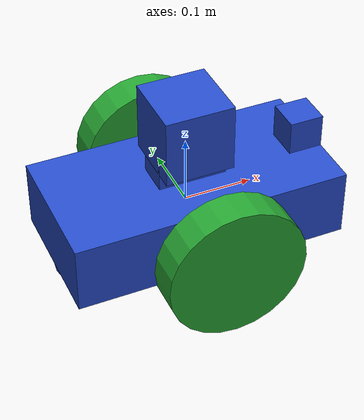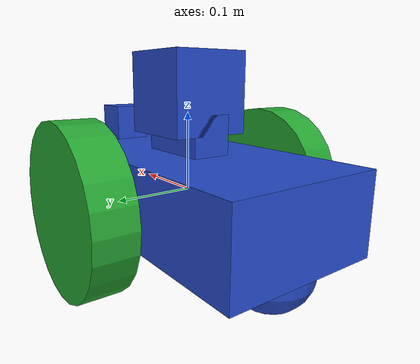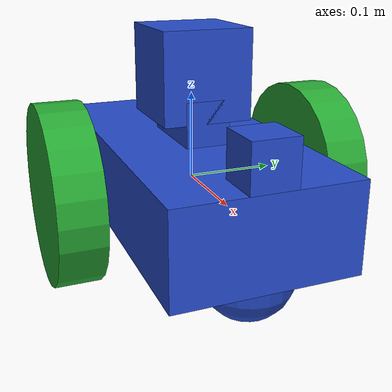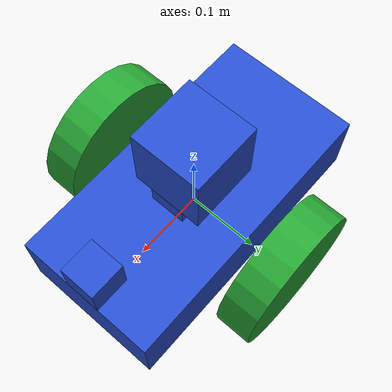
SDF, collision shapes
<?xml version='1.0'?>
<sdf version='1.6'>
  <model name='myxbot'>
    <link name='robot_footprint'>
      <pose frame=''>0 0 0 0 -0 0</pose>
      <inertial>
        <pose frame=''>0.001054 0 0.007556 0 -0 0</pose>
        <mass>16.6062</mass>
        <inertia>
          <ixx>0.209089</ixx>
          <ixy>0</ixy>
          <ixz>0</ixz>
          <iyy>0.212133</iyy>
          <iyz>0</iyz>
          <izz>0.203046</izz>
        </inertia>
      </inertial>
      <self_collide>0</self_collide>
      <kinematic>0</kinematic>
      <velocity_decay/>
      <sensor name='camera1' type='depth'>
        <always_on>1</always_on>
        <update_rate>20</update_rate>
        <visualize>1</visualize>
        <camera name='__default__'>
          <horizontal_fov>1.047</horizontal_fov>
          <image>
            <width>640</width>
            <height>480</height>
            <format>R8G8B8</format>
          </image>
          <depth_camera>
            <output>depths</output>
          </depth_camera>
          <clip>
            <near>0.1</near>
            <far>20</far>
          </clip>
        </camera>
        <plugin name='camera_controller' filename='libgazebo_ros_openni_kinect.so'>
          <alwaysOn>true</alwaysOn>
          <updateRate>10.0</updateRate>
          <cameraName>camera</cameraName>
          <frameName>camera_rgbd_frame</frameName>
          <imageTopicName>rgb/image_raw</imageTopicName>
          <depthImageTopicName>depth/image_raw</depthImageTopicName>
          <pointCloudTopicName>depth/points</pointCloudTopicName>
          <cameraInfoTopicName>rgb/camera_info</cameraInfoTopicName>
          <depthImageCameraInfoTopicName>depth/camera_info</depthImageCameraInfoTopicName>
          <pointCloudCutoff>0.4</pointCloudCutoff>
          <hackBaseline>0.07</hackBaseline>
          <distortionK1>0.0</distortionK1>
          <distortionK2>0.0</distortionK2>
          <distortionK3>0.0</distortionK3>
          <distortionT1>0.0</distortionT1>
          <distortionT2>0.0</distortionT2>
          <CxPrime>0.0</CxPrime>
          <Cx>0.0</Cx>
          <Cy>0.0</Cy>
          <focalLength>0.0</focalLength>
          <robotNamespace>/</robotNamespace>
        </plugin>
        <pose frame=''>0.175 0 0.075 0 -0 0</pose>
      </sensor>
      <sensor name='head_hokuyo_sensor' type='ray'>
        <visualize>0</visualize>
        <update_rate>40</update_rate>
        <ray>
          <scan>
            <horizontal>
              <samples>720</samples>
              <resolution>1</resolution>
              <min_angle>-1.5708</min_angle>
              <max_angle>1.5708</max_angle>
            </horizontal>
            <vertical>
              <samples>1</samples>
              <min_angle>0</min_angle>
              <max_angle>0</max_angle>
            </vertical>
          </scan>
          <range>
            <min>0.1</min>
            <max>30</max>
            <resolution>0.01</resolution>
          </range>
          <noise>
            <type>gaussian</type>
            <mean>0</mean>
            <stddev>0.01</stddev>
          </noise>
        </ray>
        <plugin name='gazebo_ros_head_hokuyo_controller' filename='libgazebo_ros_laser.so'>
          <topicName>scan</topicName>
          <frameName>hokuyo</frameName>
          <robotNamespace>/</robotNamespace>
        </plugin>
        <pose frame=''>0 0 0.125 0 -0 0</pose>
      </sensor>
      <gravity>1</gravity>
      <visual name='robot_footprint_fixed_joint_lump__chassis_visual_visual'>
        <pose frame=''>0 0 0 0 -0 0</pose>
        <geometry>
          <box>
            <size>0.4 0.2 0.1</size>
          </box>
        </geometry>
        <material>
          <script>
            <name>Gazebo/Blue</name>
            <uri>file://media/materials/scripts/gazebo.material</uri>
          </script>
          <shader type='pixel'>
            <normal_map>__default__</normal_map>
          </shader>
          <ambient>1 1 1 1</ambient>
          <diffuse>0 0 1 1</diffuse>
          <specular>0.1 0.1 0.1 1</specular>
          <emissive>0 0 0 1</emissive>
        </material>
        <transparency>0</transparency>
        <cast_shadows>1</cast_shadows>
      </visual>
      <visual name='robot_footprint_fixed_joint_lump__back_caster_visual_visual_1'>
        <pose frame=''>-0.15 0 -0.05 0 -0 0</pose>
        <geometry>
          <sphere>
            <radius>0.05</radius>
          </sphere>
        </geometry>
        <material>
          <shader type='pixel'>
            <normal_map>__default__</normal_map>
          </shader>
        </material>
        <cast_shadows>1</cast_shadows>
        <transparency>0</transparency>
      </visual>
      <visual name='robot_footprint_fixed_joint_lump__front_caster_visual_visual_2'>
        <pose frame=''>0.15 0 -0.05 0 -0 0</pose>
        <geometry>
          <sphere>
            <radius>0.05</radius>
          </sphere>
        </geometry>
        <material>
          <shader type='pixel'>
            <normal_map>__default__</normal_map>
          </shader>
        </material>
        <cast_shadows>1</cast_shadows>
        <transparency>0</transparency>
      </visual>
      <visual name='robot_footprint_fixed_joint_lump__sensor_base_visual_visual_3'>
        <pose frame=''>0 0 0.075 0 -0 0</pose>
        <geometry>
          <box>
            <size>0.1 0.05 0.05</size>
          </box>
        </geometry>
        <material>
          <script>
            <name>Gazebo/Green</name>
            <uri>file://media/materials/scripts/gazebo.material</uri>
          </script>
          <shader type='pixel'>
            <normal_map>__default__</normal_map>
          </shader>
          <ambient>0 1 0 1</ambient>
          <diffuse>0 1 0 1</diffuse>
          <specular>0.1 0.1 0.1 1</specular>
          <emissive>0 0 0 1</emissive>
        </material>
        <transparency>0</transparency>
        <cast_shadows>1</cast_shadows>
      </visual>
      <visual name='robot_footprint_fixed_joint_lump__camera_visual_visual_4'>
        <pose frame=''>0.175 0 0.075 0 -0 0</pose>
        <geometry>
          <box>
            <size>0.05 0.05 0.05</size>
          </box>
        </geometry>
        <material>
          <shader type='pixel'>
            <normal_map>__default__</normal_map>
          </shader>
        </material>
        <cast_shadows>1</cast_shadows>
        <transparency>0</transparency>
      </visual>
      <visual name='robot_footprint_fixed_joint_lump__hokuyo_visual_visual_5'>
        <pose frame=''>0 0 0.125 0 -0 0</pose>
        <geometry>
          <mesh>
            <scale>1 1 1</scale>
            <uri>/home/hytham/catkin_ws/src/slam_project/meshes/hokuyo.dae</uri>
          </mesh>
        </geometry>
        <material>
          <script>
            <uri>__default__</uri>
            <name>__default__</name>
          </script>
          <shader type='pixel'>
            <normal_map>__default__</normal_map>
          </shader>
        </material>
        <cast_shadows>1</cast_shadows>
        <transparency>0</transparency>
      </visual>
      <collision name='robot_footprint_fixed_joint_lump__collision_collision'>
        <laser_retro>0</laser_retro>
        <max_contacts>10</max_contacts>
        <pose frame=''>0 0 0 0 -0 0</pose>
        <geometry>
          <box>
            <size>0.4 0.2 0.1</size>
          </box>
        </geometry>
        <surface>
          <friction>
            <ode>
              <mu>1</mu>
              <mu2>1</mu2>
              <fdir1>0 0 0</fdir1>
              <slip1>0</slip1>
              <slip2>0</slip2>
            </ode>
            <torsional>
              <coefficient>1</coefficient>
              <patch_radius>0</patch_radius>
              <surface_radius>0</surface_radius>
              <use_patch_radius>1</use_patch_radius>
              <ode>
                <slip>0</slip>
              </ode>
            </torsional>
          </friction>
          <bounce>
            <restitution_coefficient>0</restitution_coefficient>
            <threshold>1e+06</threshold>
          </bounce>
          <contact>
            <collide_without_contact>0</collide_without_contact>
            <collide_without_contact_bitmask>1</collide_without_contact_bitmask>
            <collide_bitmask>1</collide_bitmask>
            <ode>
              <soft_cfm>0</soft_cfm>
              <soft_erp>0.2</soft_erp>
              <kp>1e+13</kp>
              <kd>1</kd>
              <max_vel>0.01</max_vel>
              <min_depth>0</min_depth>
            </ode>
            <bullet>
              <split_impulse>1</split_impulse>
              <split_impulse_penetration_threshold>-0.01</split_impulse_penetration_threshold>
              <soft_cfm>0</soft_cfm>
              <soft_erp>0.2</soft_erp>
              <kp>1e+13</kp>
              <kd>1</kd>
            </bullet>
          </contact>
        </surface>
      </collision>
      <collision name='robot_footprint_fixed_joint_lump__back_caster_collision_collision_1'>
        <laser_retro>0</laser_retro>
        <max_contacts>10</max_contacts>
        <pose frame=''>-0.15 0 -0.05 0 -0 0</pose>
        <geometry>
          <sphere>
            <radius>0.0499</radius>
          </sphere>
        </geometry>
        <surface>
          <friction>
            <ode>
              <mu>1</mu>
              <mu2>1</mu2>
              <fdir1>0 0 0</fdir1>
              <slip1>0</slip1>
              <slip2>0</slip2>
            </ode>
            <torsional>
              <coefficient>1</coefficient>
              <patch_radius>0</patch_radius>
              <surface_radius>0</surface_radius>
              <use_patch_radius>1</use_patch_radius>
              <ode>
                <slip>0</slip>
              </ode>
            </torsional>
          </friction>
          <bounce>
            <restitution_coefficient>0</restitution_coefficient>
            <threshold>1e+06</threshold>
          </bounce>
          <contact>
            <collide_without_contact>0</collide_without_contact>
            <collide_without_contact_bitmask>1</collide_without_contact_bitmask>
            <collide_bitmask>1</collide_bitmask>
            <ode>
              <soft_cfm>0</soft_cfm>
              <soft_erp>0.2</soft_erp>
              <kp>1e+13</kp>
              <kd>1</kd>
              <max_vel>0.01</max_vel>
              <min_depth>0</min_depth>
            </ode>
            <bullet>
              <split_impulse>1</split_impulse>
              <split_impulse_penetration_threshold>-0.01</split_impulse_penetration_threshold>
              <soft_cfm>0</soft_cfm>
              <soft_erp>0.2</soft_erp>
              <kp>1e+13</kp>
              <kd>1</kd>
            </bullet>
          </contact>
        </surface>
      </collision>
      <collision name='robot_footprint_fixed_joint_lump__sensor_base_collision_collision_3'>
        <laser_retro>0</laser_retro>
        <max_contacts>10</max_contacts>
        <pose frame=''>0 0 0.075 0 -0 0</pose>
        <geometry>
          <box>
            <size>0.1 0.05 0.05</size>
          </box>
        </geometry>
        <surface>
          <friction>
            <ode>
              <mu>1</mu>
              <mu2>1</mu2>
              <fdir1>0 0 0</fdir1>
              <slip1>0</slip1>
              <slip2>0</slip2>
            </ode>
            <torsional>
              <coefficient>1</coefficient>
              <patch_radius>0</patch_radius>
              <surface_radius>0</surface_radius>
              <use_patch_radius>1</use_patch_radius>
              <ode>
                <slip>0</slip>
              </ode>
            </torsional>
          </friction>
          <bounce>
            <restitution_coefficient>0</restitution_coefficient>
            <threshold>1e+06</threshold>
          </bounce>
          <contact>
            <collide_without_contact>0</collide_without_contact>
            <collide_without_contact_bitmask>1</collide_without_contact_bitmask>
            <collide_bitmask>1</collide_bitmask>
            <ode>
              <soft_cfm>0</soft_cfm>
              <soft_erp>0.2</soft_erp>
              <kp>1e+13</kp>
              <kd>1</kd>
              <max_vel>0.01</max_vel>
              <min_depth>0</min_depth>
            </ode>
            <bullet>
              <split_impulse>1</split_impulse>
              <split_impulse_penetration_threshold>-0.01</split_impulse_penetration_threshold>
              <soft_cfm>0</soft_cfm>
              <soft_erp>0.2</soft_erp>
              <kp>1e+13</kp>
              <kd>1</kd>
            </bullet>
          </contact>
        </surface>
      </collision>
      <collision name='robot_footprint_fixed_joint_lump__hokuyo_collision_collision_5'>
        <laser_retro>0</laser_retro>
        <max_contacts>10</max_contacts>
        <pose frame=''>0 0 0.125 0 -0 0</pose>
        <geometry>
          <box>
            <size>0.1 0.1 0.1</size>
          </box>
        </geometry>
        <surface>
          <friction>
            <ode>
              <mu>1</mu>
              <mu2>1</mu2>
              <fdir1>0 0 0</fdir1>
              <slip1>0</slip1>
              <slip2>0</slip2>
            </ode>
            <torsional>
              <coefficient>1</coefficient>
              <patch_radius>0</patch_radius>
              <surface_radius>0</surface_radius>
              <use_patch_radius>1</use_patch_radius>
              <ode>
                <slip>0</slip>
              </ode>
            </torsional>
          </friction>
          <bounce>
            <restitution_coefficient>0</restitution_coefficient>
            <threshold>1e+06</threshold>
          </bounce>
          <contact>
            <collide_without_contact>0</collide_without_contact>
            <collide_without_contact_bitmask>1</collide_without_contact_bitmask>
            <collide_bitmask>1</collide_bitmask>
            <ode>
              <soft_cfm>0</soft_cfm>
              <soft_erp>0.2</soft_erp>
              <kp>1e+13</kp>
              <kd>1</kd>
              <max_vel>0.01</max_vel>
              <min_depth>0</min_depth>
            </ode>
            <bullet>
              <split_impulse>1</split_impulse>
              <split_impulse_penetration_threshold>-0.01</split_impulse_penetration_threshold>
              <soft_cfm>0</soft_cfm>
              <soft_erp>0.2</soft_erp>
              <kp>1e+13</kp>
              <kd>1</kd>
            </bullet>
          </contact>
        </surface>
      </collision>
      <collision name='robot_footprint_fixed_joint_lump__front_caster_collision_collision_2'>
        <laser_retro>0</laser_retro>
        <max_contacts>10</max_contacts>
        <pose frame=''>0.15 0 -0.05 0 -0 0</pose>
        <geometry>
          <sphere>
            <radius>0.0499</radius>
          </sphere>
        </geometry>
        <surface>
          <friction>
            <ode>
              <mu>1</mu>
              <mu2>1</mu2>
              <fdir1>0 0 0</fdir1>
              <slip1>0</slip1>
              <slip2>0</slip2>
            </ode>
            <torsional>
              <coefficient>1</coefficient>
              <patch_radius>0</patch_radius>
              <surface_radius>0</surface_radius>
              <use_patch_radius>1</use_patch_radius>
              <ode>
                <slip>0</slip>
              </ode>
            </torsional>
          </friction>
          <bounce>
            <restitution_coefficient>0</restitution_coefficient>
            <threshold>1e+06</threshold>
          </bounce>
          <contact>
            <collide_without_contact>0</collide_without_contact>
            <collide_without_contact_bitmask>1</collide_without_contact_bitmask>
            <collide_bitmask>1</collide_bitmask>
            <ode>
              <soft_cfm>0</soft_cfm>
              <soft_erp>0.2</soft_erp>
              <kp>1e+13</kp>
              <kd>1</kd>
              <max_vel>0.01</max_vel>
              <min_depth>0</min_depth>
            </ode>
            <bullet>
              <split_impulse>1</split_impulse>
              <split_impulse_penetration_threshold>-0.01</split_impulse_penetration_threshold>
              <soft_cfm>0</soft_cfm>
              <soft_erp>0.2</soft_erp>
              <kp>1e+13</kp>
              <kd>1</kd>
            </bullet>
          </contact>
        </surface>
      </collision>
      <collision name='robot_footprint_fixed_joint_lump__camera_collision_collision_4'>
        <laser_retro>0</laser_retro>
        <max_contacts>10</max_contacts>
        <pose frame=''>0.175 0 0.075 0 -0 0</pose>
        <geometry>
          <box>
            <size>0.05 0.05 0.05</size>
          </box>
        </geometry>
        <surface>
          <friction>
            <ode>
              <mu>1</mu>
              <mu2>1</mu2>
              <fdir1>0 0 0</fdir1>
              <slip1>0</slip1>
              <slip2>0</slip2>
            </ode>
            <torsional>
              <coefficient>1</coefficient>
              <patch_radius>0</patch_radius>
              <surface_radius>0</surface_radius>
              <use_patch_radius>1</use_patch_radius>
              <ode>
                <slip>0</slip>
              </ode>
            </torsional>
          </friction>
          <bounce>
            <restitution_coefficient>0</restitution_coefficient>
            <threshold>1e+06</threshold>
          </bounce>
          <contact>
            <collide_without_contact>0</collide_without_contact>
            <collide_without_contact_bitmask>1</collide_without_contact_bitmask>
            <collide_bitmask>1</collide_bitmask>
            <ode>
              <soft_cfm>0</soft_cfm>
              <soft_erp>0.2</soft_erp>
              <kp>1e+13</kp>
              <kd>1</kd>
              <max_vel>0.01</max_vel>
              <min_depth>0</min_depth>
            </ode>
            <bullet>
              <split_impulse>1</split_impulse>
              <split_impulse_penetration_threshold>-0.01</split_impulse_penetration_threshold>
              <soft_cfm>0</soft_cfm>
              <soft_erp>0.2</soft_erp>
              <kp>1e+13</kp>
              <kd>1</kd>
            </bullet>
          </contact>
        </surface>
      </collision>
    </link>
    <link name='left_wheel'>
      <pose frame=''>0 0.15 -0 0 -0 0</pose>
      <inertial>
        <pose frame=''>0 0 0 -0 1.5707 1.5707</pose>
        <mass>5</mass>
        <inertia>
          <ixx>0.1</ixx>
          <ixy>0</ixy>
          <ixz>0</ixz>
          <iyy>0.1</iyy>
          <iyz>0</iyz>
          <izz>0.1</izz>
        </inertia>
      </inertial>
      <self_collide>0</self_collide>
      <kinematic>0</kinematic>
      <velocity_decay/>
      <visual name='left_wheel_visual_visual'>
        <pose frame=''>0 0 0 4.8e-05 1.5707 1.57075</pose>
        <geometry>
          <cylinder>
            <length>0.05</length>
            <radius>0.1</radius>
          </cylinder>
        </geometry>
        <material>
          <script>
            <name>Gazebo/Green</name>
            <uri>file://media/materials/scripts/gazebo.material</uri>
          </script>
          <shader type='pixel'/>
          <ambient>0 1 0 1</ambient>
          <diffuse>0 1 0 1</diffuse>
          <specular>0.1 0.1 0.1 1</specular>
          <emissive>0 0 0 1</emissive>
        </material>
        <transparency>0</transparency>
        <cast_shadows>1</cast_shadows>
      </visual>
      <collision name='left_wheel_collision_collision'>
        <laser_retro>0</laser_retro>
        <max_contacts>10</max_contacts>
        <pose frame=''>0 0 0 -0 1.5707 1.5707</pose>
        <geometry>
          <cylinder>
            <radius>0.1</radius>
            <length>0.05</length>
          </cylinder>
        </geometry>
        <surface>
          <friction>
            <ode>
              <mu>1</mu>
              <mu2>1</mu2>
              <fdir1>0 0 0</fdir1>
              <slip1>0</slip1>
              <slip2>0</slip2>
            </ode>
            <torsional>
              <coefficient>1</coefficient>
              <patch_radius>0</patch_radius>
              <surface_radius>0</surface_radius>
              <use_patch_radius>1</use_patch_radius>
              <ode>
                <slip>0</slip>
              </ode>
            </torsional>
          </friction>
          <bounce>
            <restitution_coefficient>0</restitution_coefficient>
            <threshold>1e+06</threshold>
          </bounce>
          <contact>
            <collide_without_contact>0</collide_without_contact>
            <collide_without_contact_bitmask>1</collide_without_contact_bitmask>
            <collide_bitmask>1</collide_bitmask>
            <ode>
              <soft_cfm>0</soft_cfm>
              <soft_erp>0.2</soft_erp>
              <kp>1e+13</kp>
              <kd>1</kd>
              <max_vel>0.01</max_vel>
              <min_depth>0</min_depth>
            </ode>
            <bullet>
              <split_impulse>1</split_impulse>
              <split_impulse_penetration_threshold>-0.01</split_impulse_penetration_threshold>
              <soft_cfm>0</soft_cfm>
              <soft_erp>0.2</soft_erp>
              <kp>1e+13</kp>
              <kd>1</kd>
            </bullet>
          </contact>
        </surface>
      </collision>
    </link>
    <link name='right_wheel'>
      <pose frame=''>0 -0.15 0 0 -0 0</pose>
      <inertial>
        <pose frame=''>0 0 0 -0 1.5707 1.5707</pose>
        <mass>5</mass>
        <inertia>
          <ixx>0.1</ixx>
          <ixy>0</ixy>
          <ixz>0</ixz>
          <iyy>0.1</iyy>
          <iyz>0</iyz>
          <izz>0.1</izz>
        </inertia>
      </inertial>
      <self_collide>0</self_collide>
      <kinematic>0</kinematic>
      <velocity_decay/>
      <visual name='right_wheel_visual_visual'>
        <pose frame=''>0 0 0 4.8e-05 1.5707 1.57075</pose>
        <geometry>
          <cylinder>
            <length>0.05</length>
            <radius>0.1</radius>
          </cylinder>
        </geometry>
        <material>
          <script>
            <name>Gazebo/Green</name>
            <uri>file://media/materials/scripts/gazebo.material</uri>
          </script>
          <shader type='pixel'/>
          <ambient>0 1 0 1</ambient>
          <diffuse>0 1 0 1</diffuse>
          <specular>0.1 0.1 0.1 1</specular>
          <emissive>0 0 0 1</emissive>
        </material>
        <transparency>0</transparency>
        <cast_shadows>1</cast_shadows>
      </visual>
      <collision name='right_wheel_collision_collision'>
        <laser_retro>0</laser_retro>
        <max_contacts>10</max_contacts>
        <pose frame=''>0 0 0 -0 1.5707 1.5707</pose>
        <geometry>
          <cylinder>
            <radius>0.1</radius>
            <length>0.05</length>
          </cylinder>
        </geometry>
        <surface>
          <friction>
            <ode>
              <mu>1</mu>
              <mu2>1</mu2>
              <fdir1>0 0 0</fdir1>
              <slip1>0</slip1>
              <slip2>0</slip2>
            </ode>
            <torsional>
              <coefficient>1</coefficient>
              <patch_radius>0</patch_radius>
              <surface_radius>0</surface_radius>
              <use_patch_radius>1</use_patch_radius>
              <ode>
                <slip>0</slip>
              </ode>
            </torsional>
          </friction>
          <bounce>
            <restitution_coefficient>0</restitution_coefficient>
            <threshold>1e+06</threshold>
          </bounce>
          <contact>
            <collide_without_contact>0</collide_without_contact>
            <collide_without_contact_bitmask>1</collide_without_contact_bitmask>
            <collide_bitmask>1</collide_bitmask>
            <ode>
              <soft_cfm>0</soft_cfm>
              <soft_erp>0.2</soft_erp>
              <kp>1e+13</kp>
              <kd>1</kd>
              <max_vel>0.01</max_vel>
              <min_depth>0</min_depth>
            </ode>
            <bullet>
              <split_impulse>1</split_impulse>
              <split_impulse_penetration_threshold>-0.01</split_impulse_penetration_threshold>
              <soft_cfm>0</soft_cfm>
              <soft_erp>0.2</soft_erp>
              <kp>1e+13</kp>
              <kd>1</kd>
            </bullet>
          </contact>
        </surface>
      </collision>
    </link>
    <joint name='left_wheel_hinge' type='revolute'>
      <parent>robot_footprint</parent>
      <child>left_wheel</child>
      <pose frame=''>0 0 0 0 -0 0</pose>
      <axis>
        <xyz>0 1 0</xyz>
        <use_parent_model_frame>1</use_parent_model_frame>
        <limit>
          <lower>-1e+16</lower>
          <upper>1e+16</upper>
          <effort>-1</effort>
          <velocity>-1</velocity>
        </limit>
        <dynamics>
          <spring_reference>0</spring_reference>
          <spring_stiffness>0</spring_stiffness>
          <damping>1</damping>
          <friction>1</friction>
        </dynamics>
      </axis>
      <physics>
        <ode>
          <limit>
            <cfm>0</cfm>
            <erp>0.2</erp>
          </limit>
          <suspension>
            <cfm>0</cfm>
            <erp>0.2</erp>
          </suspension>
        </ode>
      </physics>
    </joint>
    <joint name='right_wheel_hinge' type='revolute'>
      <parent>robot_footprint</parent>
      <child>right_wheel</child>
      <pose frame=''>0 0 0 0 -0 0</pose>
      <axis>
        <xyz>0 1 0</xyz>
        <use_parent_model_frame>1</use_parent_model_frame>
        <limit>
          <lower>-1e+16</lower>
          <upper>1e+16</upper>
          <effort>-1</effort>
          <velocity>-1</velocity>
        </limit>
        <dynamics>
          <spring_reference>0</spring_reference>
          <spring_stiffness>0</spring_stiffness>
          <damping>1</damping>
          <friction>1</friction>
        </dynamics>
      </axis>
      <physics>
        <ode>
          <limit>
            <cfm>0</cfm>
            <erp>0.2</erp>
          </limit>
          <suspension>
            <cfm>0</cfm>
            <erp>0.2</erp>
          </suspension>
        </ode>
      </physics>
    </joint>
    <static>0</static>
    <allow_auto_disable>1</allow_auto_disable>
    <plugin name='differential_drive_controller' filename='libgazebo_ros_diff_drive.so'>
      <legacyMode>false</legacyMode>
      <alwaysOn>true</alwaysOn>
      <updateRate>10</updateRate>
      <leftJoint>left_wheel_hinge</leftJoint>
      <rightJoint>right_wheel_hinge</rightJoint>
      <wheelSeparation>0.4</wheelSeparation>
      <wheelDiameter>0.2</wheelDiameter>
      <torque>10</torque>
      <commandTopic>cmd_vel</commandTopic>
      <odometryTopic>odom</odometryTopic>
      <odometryFrame>odom</odometryFrame>
      <robotBaseFrame>robot_footprint</robotBaseFrame>
      <robotNamespace>/</robotNamespace>
    </plugin>
  </model>
</sdf>
